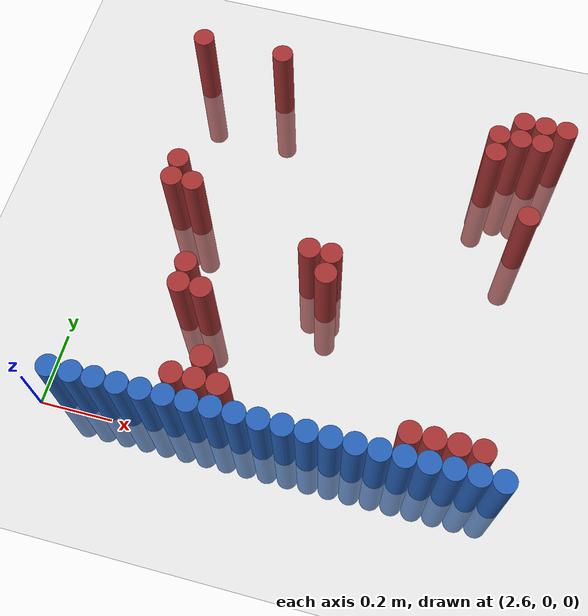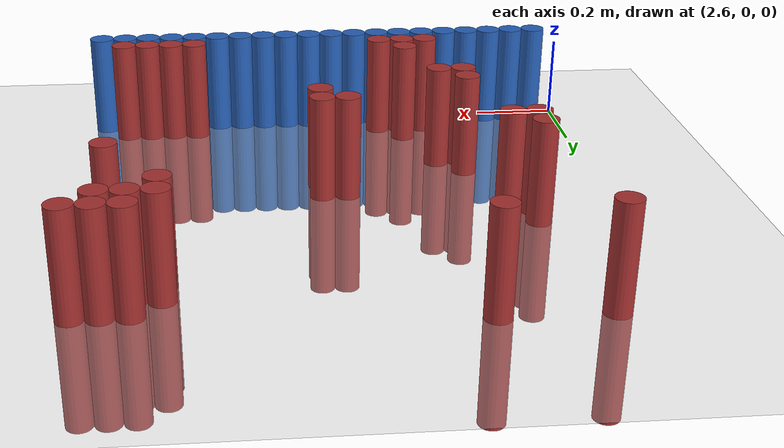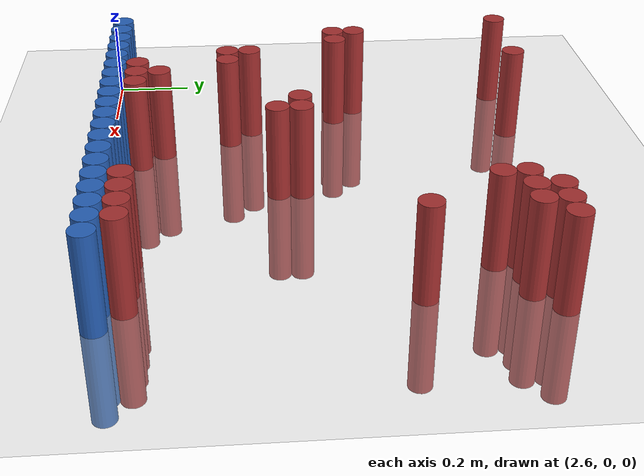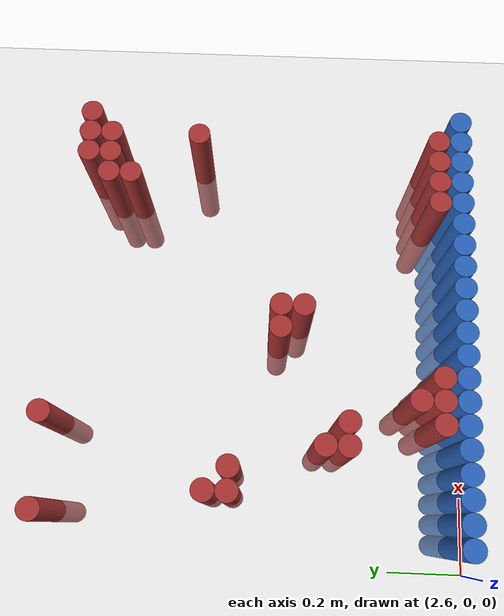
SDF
<sdf version="1.6">
 <world name="default">
  <model name="ground_plane">
   <static>1</static>
   <link name="link">
    <collision name="collision">
     <geometry><plane><normal>0 0 1</normal><size>100 100</size></plane></geometry>
     <surface><friction><ode><mu>100</mu><mu2>50</mu2></ode></friction></surface>
    </collision>
    <visual name="visual">
     <cast_shadows>0</cast_shadows>
     <geometry><plane><normal>0 0 1</normal><size>100 100</size></plane></geometry>
     <material>
      <script><uri>file://media/materials/scripts/gazebo.material</uri><name>Gazebo/Grey</name></script>
     </material>
    </visual>
   </link>
  </model>
  <model name="unit_cylinder_164">
   <static>1</static>
   <pose>2.730000 1.110000 0.000000 0.000000 0.000000 0.000000</pose>
   <link name="link">
    <inertial>
     <mass>1</mass>
     <inertia><ixx>0.145833</ixx><ixy>0</ixy><ixz>0</ixz><iyy>0.145833</iyy><iyz>0</iyz><izz>0.125</izz></inertia>
    </inertial>
    <collision name="collision">
     <geometry><cylinder><radius>0.030000</radius><length>0.5</length></cylinder></geometry>
    </collision>
    <visual name="visual">
     <geometry><cylinder><radius>0.030000</radius><length>0.5</length></cylinder></geometry>
     <material>
      <ambient>0.648000 0.192000 0.192000 1</ambient>
      <diffuse>0.648000 0.192000 0.192000 1</diffuse>
     </material>
     <material>
      <script><name>Gazebo/Grey</name><uri>file://media/materials/scripts/gazebo.material</uri></script>
     </material>
    </visual>
   </link>
  </model>
  <model name="unit_cylinder_165">
   <static>1</static>
   <pose>2.970000 1.110000 0.000000 0.000000 0.000000 0.000000</pose>
   <link name="link">
    <inertial>
     <mass>1</mass>
     <inertia><ixx>0.145833</ixx><ixy>0</ixy><ixz>0</ixz><iyy>0.145833</iyy><iyz>0</iyz><izz>0.125</izz></inertia>
    </inertial>
    <collision name="collision">
     <geometry><cylinder><radius>0.030000</radius><length>0.5</length></cylinder></geometry>
    </collision>
    <visual name="visual">
     <geometry><cylinder><radius>0.030000</radius><length>0.5</length></cylinder></geometry>
     <material>
      <ambient>0.648000 0.192000 0.192000 1</ambient>
      <diffuse>0.648000 0.192000 0.192000 1</diffuse>
     </material>
     <material>
      <script><name>Gazebo/Grey</name><uri>file://media/materials/scripts/gazebo.material</uri></script>
     </material>
    </visual>
   </link>
  </model>
  <model name="unit_cylinder_171">
   <static>1</static>
   <pose>3.690000 1.050000 0.000000 0.000000 0.000000 0.000000</pose>
   <link name="link">
    <inertial>
     <mass>1</mass>
     <inertia><ixx>0.145833</ixx><ixy>0</ixy><ixz>0</ixz><iyy>0.145833</iyy><iyz>0</iyz><izz>0.125</izz></inertia>
    </inertial>
    <collision name="collision">
     <geometry><cylinder><radius>0.030000</radius><length>0.5</length></cylinder></geometry>
    </collision>
    <visual name="visual">
     <geometry><cylinder><radius>0.030000</radius><length>0.5</length></cylinder></geometry>
     <material>
      <ambient>0.648000 0.192000 0.192000 1</ambient>
      <diffuse>0.648000 0.192000 0.192000 1</diffuse>
     </material>
     <material>
      <script><name>Gazebo/Grey</name><uri>file://media/materials/scripts/gazebo.material</uri></script>
     </material>
    </visual>
   </link>
  </model>
  <model name="unit_cylinder_172">
   <static>1</static>
   <pose>3.750000 1.050000 0.000000 0.000000 0.000000 0.000000</pose>
   <link name="link">
    <inertial>
     <mass>1</mass>
     <inertia><ixx>0.145833</ixx><ixy>0</ixy><ixz>0</ixz><iyy>0.145833</iyy><iyz>0</iyz><izz>0.125</izz></inertia>
    </inertial>
    <collision name="collision">
     <geometry><cylinder><radius>0.030000</radius><length>0.5</length></cylinder></geometry>
    </collision>
    <visual name="visual">
     <geometry><cylinder><radius>0.030000</radius><length>0.5</length></cylinder></geometry>
     <material>
      <ambient>0.648000 0.192000 0.192000 1</ambient>
      <diffuse>0.648000 0.192000 0.192000 1</diffuse>
     </material>
     <material>
      <script><name>Gazebo/Grey</name><uri>file://media/materials/scripts/gazebo.material</uri></script>
     </material>
    </visual>
   </link>
  </model>
  <model name="unit_cylinder_173">
   <static>1</static>
   <pose>3.810000 1.050000 0.000000 0.000000 0.000000 0.000000</pose>
   <link name="link">
    <inertial>
     <mass>1</mass>
     <inertia><ixx>0.145833</ixx><ixy>0</ixy><ixz>0</ixz><iyy>0.145833</iyy><iyz>0</iyz><izz>0.125</izz></inertia>
    </inertial>
    <collision name="collision">
     <geometry><cylinder><radius>0.030000</radius><length>0.5</length></cylinder></geometry>
    </collision>
    <visual name="visual">
     <geometry><cylinder><radius>0.030000</radius><length>0.5</length></cylinder></geometry>
     <material>
      <ambient>0.648000 0.192000 0.192000 1</ambient>
      <diffuse>0.648000 0.192000 0.192000 1</diffuse>
     </material>
     <material>
      <script><name>Gazebo/Grey</name><uri>file://media/materials/scripts/gazebo.material</uri></script>
     </material>
    </visual>
   </link>
  </model>
  <model name="unit_cylinder_175">
   <static>1</static>
   <pose>3.630000 0.990000 0.000000 0.000000 0.000000 0.000000</pose>
   <link name="link">
    <inertial>
     <mass>1</mass>
     <inertia><ixx>0.145833</ixx><ixy>0</ixy><ixz>0</ixz><iyy>0.145833</iyy><iyz>0</iyz><izz>0.125</izz></inertia>
    </inertial>
    <collision name="collision">
     <geometry><cylinder><radius>0.030000</radius><length>0.5</length></cylinder></geometry>
    </collision>
    <visual name="visual">
     <geometry><cylinder><radius>0.030000</radius><length>0.5</length></cylinder></geometry>
     <material>
      <ambient>0.648000 0.192000 0.192000 1</ambient>
      <diffuse>0.648000 0.192000 0.192000 1</diffuse>
     </material>
     <material>
      <script><name>Gazebo/Grey</name><uri>file://media/materials/scripts/gazebo.material</uri></script>
     </material>
    </visual>
   </link>
  </model>
  <model name="unit_cylinder_176">
   <static>1</static>
   <pose>3.690000 0.990000 0.000000 0.000000 0.000000 0.000000</pose>
   <link name="link">
    <inertial>
     <mass>1</mass>
     <inertia><ixx>0.145833</ixx><ixy>0</ixy><ixz>0</ixz><iyy>0.145833</iyy><iyz>0</iyz><izz>0.125</izz></inertia>
    </inertial>
    <collision name="collision">
     <geometry><cylinder><radius>0.030000</radius><length>0.5</length></cylinder></geometry>
    </collision>
    <visual name="visual">
     <geometry><cylinder><radius>0.030000</radius><length>0.5</length></cylinder></geometry>
     <material>
      <ambient>0.648000 0.192000 0.192000 1</ambient>
      <diffuse>0.648000 0.192000 0.192000 1</diffuse>
     </material>
     <material>
      <script><name>Gazebo/Grey</name><uri>file://media/materials/scripts/gazebo.material</uri></script>
     </material>
    </visual>
   </link>
  </model>
  <model name="unit_cylinder_177">
   <static>1</static>
   <pose>3.750000 0.990000 0.000000 0.000000 0.000000 0.000000</pose>
   <link name="link">
    <inertial>
     <mass>1</mass>
     <inertia><ixx>0.145833</ixx><ixy>0</ixy><ixz>0</ixz><iyy>0.145833</iyy><iyz>0</iyz><izz>0.125</izz></inertia>
    </inertial>
    <collision name="collision">
     <geometry><cylinder><radius>0.030000</radius><length>0.5</length></cylinder></geometry>
    </collision>
    <visual name="visual">
     <geometry><cylinder><radius>0.030000</radius><length>0.5</length></cylinder></geometry>
     <material>
      <ambient>0.648000 0.192000 0.192000 1</ambient>
      <diffuse>0.648000 0.192000 0.192000 1</diffuse>
     </material>
     <material>
      <script><name>Gazebo/Grey</name><uri>file://media/materials/scripts/gazebo.material</uri></script>
     </material>
    </visual>
   </link>
  </model>
  <model name="unit_cylinder_180">
   <static>1</static>
   <pose>3.630000 0.930000 0.000000 0.000000 0.000000 0.000000</pose>
   <link name="link">
    <inertial>
     <mass>1</mass>
     <inertia><ixx>0.145833</ixx><ixy>0</ixy><ixz>0</ixz><iyy>0.145833</iyy><iyz>0</iyz><izz>0.125</izz></inertia>
    </inertial>
    <collision name="collision">
     <geometry><cylinder><radius>0.030000</radius><length>0.5</length></cylinder></geometry>
    </collision>
    <visual name="visual">
     <geometry><cylinder><radius>0.030000</radius><length>0.5</length></cylinder></geometry>
     <material>
      <ambient>0.648000 0.192000 0.192000 1</ambient>
      <diffuse>0.648000 0.192000 0.192000 1</diffuse>
     </material>
     <material>
      <script><name>Gazebo/Grey</name><uri>file://media/materials/scripts/gazebo.material</uri></script>
     </material>
    </visual>
   </link>
  </model>
  <model name="unit_cylinder_181">
   <static>1</static>
   <pose>3.750000 0.750000 0.000000 0.000000 0.000000 0.000000</pose>
   <link name="link">
    <inertial>
     <mass>1</mass>
     <inertia><ixx>0.145833</ixx><ixy>0</ixy><ixz>0</ixz><iyy>0.145833</iyy><iyz>0</iyz><izz>0.125</izz></inertia>
    </inertial>
    <collision name="collision">
     <geometry><cylinder><radius>0.030000</radius><length>0.5</length></cylinder></geometry>
    </collision>
    <visual name="visual">
     <geometry><cylinder><radius>0.030000</radius><length>0.5</length></cylinder></geometry>
     <material>
      <ambient>0.648000 0.192000 0.192000 1</ambient>
      <diffuse>0.648000 0.192000 0.192000 1</diffuse>
     </material>
     <material>
      <script><name>Gazebo/Grey</name><uri>file://media/materials/scripts/gazebo.material</uri></script>
     </material>
    </visual>
   </link>
  </model>
  <model name="unit_cylinder_182">
   <static>1</static>
   <pose>2.790000 0.690000 0.000000 0.000000 0.000000 0.000000</pose>
   <link name="link">
    <inertial>
     <mass>1</mass>
     <inertia><ixx>0.145833</ixx><ixy>0</ixy><ixz>0</ixz><iyy>0.145833</iyy><iyz>0</iyz><izz>0.125</izz></inertia>
    </inertial>
    <collision name="collision">
     <geometry><cylinder><radius>0.030000</radius><length>0.5</length></cylinder></geometry>
    </collision>
    <visual name="visual">
     <geometry><cylinder><radius>0.030000</radius><length>0.5</length></cylinder></geometry>
     <material>
      <ambient>0.648000 0.192000 0.192000 1</ambient>
      <diffuse>0.648000 0.192000 0.192000 1</diffuse>
     </material>
     <material>
      <script><name>Gazebo/Grey</name><uri>file://media/materials/scripts/gazebo.material</uri></script>
     </material>
    </visual>
   </link>
  </model>
  <model name="unit_cylinder_183">
   <static>1</static>
   <pose>2.790000 0.630000 0.000000 0.000000 0.000000 0.000000</pose>
   <link name="link">
    <inertial>
     <mass>1</mass>
     <inertia><ixx>0.145833</ixx><ixy>0</ixy><ixz>0</ixz><iyy>0.145833</iyy><iyz>0</iyz><izz>0.125</izz></inertia>
    </inertial>
    <collision name="collision">
     <geometry><cylinder><radius>0.030000</radius><length>0.5</length></cylinder></geometry>
    </collision>
    <visual name="visual">
     <geometry><cylinder><radius>0.030000</radius><length>0.5</length></cylinder></geometry>
     <material>
      <ambient>0.648000 0.192000 0.192000 1</ambient>
      <diffuse>0.648000 0.192000 0.192000 1</diffuse>
     </material>
     <material>
      <script><name>Gazebo/Grey</name><uri>file://media/materials/scripts/gazebo.material</uri></script>
     </material>
    </visual>
   </link>
  </model>
  <model name="unit_cylinder_184">
   <static>1</static>
   <pose>2.850000 0.630000 0.000000 0.000000 0.000000 0.000000</pose>
   <link name="link">
    <inertial>
     <mass>1</mass>
     <inertia><ixx>0.145833</ixx><ixy>0</ixy><ixz>0</ixz><iyy>0.145833</iyy><iyz>0</iyz><izz>0.125</izz></inertia>
    </inertial>
    <collision name="collision">
     <geometry><cylinder><radius>0.030000</radius><length>0.5</length></cylinder></geometry>
    </collision>
    <visual name="visual">
     <geometry><cylinder><radius>0.030000</radius><length>0.5</length></cylinder></geometry>
     <material>
      <ambient>0.648000 0.192000 0.192000 1</ambient>
      <diffuse>0.648000 0.192000 0.192000 1</diffuse>
     </material>
     <material>
      <script><name>Gazebo/Grey</name><uri>file://media/materials/scripts/gazebo.material</uri></script>
     </material>
    </visual>
   </link>
  </model>
  <model name="unit_cylinder_188">
   <static>1</static>
   <pose>3.210000 0.510000 0.000000 0.000000 0.000000 0.000000</pose>
   <link name="link">
    <inertial>
     <mass>1</mass>
     <inertia><ixx>0.145833</ixx><ixy>0</ixy><ixz>0</ixz><iyy>0.145833</iyy><iyz>0</iyz><izz>0.125</izz></inertia>
    </inertial>
    <collision name="collision">
     <geometry><cylinder><radius>0.030000</radius><length>0.5</length></cylinder></geometry>
    </collision>
    <visual name="visual">
     <geometry><cylinder><radius>0.030000</radius><length>0.5</length></cylinder></geometry>
     <material>
      <ambient>0.648000 0.192000 0.192000 1</ambient>
      <diffuse>0.648000 0.192000 0.192000 1</diffuse>
     </material>
     <material>
      <script><name>Gazebo/Grey</name><uri>file://media/materials/scripts/gazebo.material</uri></script>
     </material>
    </visual>
   </link>
  </model>
  <model name="unit_cylinder_189">
   <static>1</static>
   <pose>3.270000 0.510000 0.000000 0.000000 0.000000 0.000000</pose>
   <link name="link">
    <inertial>
     <mass>1</mass>
     <inertia><ixx>0.145833</ixx><ixy>0</ixy><ixz>0</ixz><iyy>0.145833</iyy><iyz>0</iyz><izz>0.125</izz></inertia>
    </inertial>
    <collision name="collision">
     <geometry><cylinder><radius>0.030000</radius><length>0.5</length></cylinder></geometry>
    </collision>
    <visual name="visual">
     <geometry><cylinder><radius>0.030000</radius><length>0.5</length></cylinder></geometry>
     <material>
      <ambient>0.648000 0.192000 0.192000 1</ambient>
      <diffuse>0.648000 0.192000 0.192000 1</diffuse>
     </material>
     <material>
      <script><name>Gazebo/Grey</name><uri>file://media/materials/scripts/gazebo.material</uri></script>
     </material>
    </visual>
   </link>
  </model>
  <model name="unit_cylinder_190">
   <static>1</static>
   <pose>3.270000 0.450000 0.000000 0.000000 0.000000 0.000000</pose>
   <link name="link">
    <inertial>
     <mass>1</mass>
     <inertia><ixx>0.145833</ixx><ixy>0</ixy><ixz>0</ixz><iyy>0.145833</iyy><iyz>0</iyz><izz>0.125</izz></inertia>
    </inertial>
    <collision name="collision">
     <geometry><cylinder><radius>0.030000</radius><length>0.5</length></cylinder></geometry>
    </collision>
    <visual name="visual">
     <geometry><cylinder><radius>0.030000</radius><length>0.5</length></cylinder></geometry>
     <material>
      <ambient>0.648000 0.192000 0.192000 1</ambient>
      <diffuse>0.648000 0.192000 0.192000 1</diffuse>
     </material>
     <material>
      <script><name>Gazebo/Grey</name><uri>file://media/materials/scripts/gazebo.material</uri></script>
     </material>
    </visual>
   </link>
  </model>
  <model name="unit_cylinder_191">
   <static>1</static>
   <pose>2.910000 0.390000 0.000000 0.000000 0.000000 0.000000</pose>
   <link name="link">
    <inertial>
     <mass>1</mass>
     <inertia><ixx>0.145833</ixx><ixy>0</ixy><ixz>0</ixz><iyy>0.145833</iyy><iyz>0</iyz><izz>0.125</izz></inertia>
    </inertial>
    <collision name="collision">
     <geometry><cylinder><radius>0.030000</radius><length>0.5</length></cylinder></geometry>
    </collision>
    <visual name="visual">
     <geometry><cylinder><radius>0.030000</radius><length>0.5</length></cylinder></geometry>
     <material>
      <ambient>0.648000 0.192000 0.192000 1</ambient>
      <diffuse>0.648000 0.192000 0.192000 1</diffuse>
     </material>
     <material>
      <script><name>Gazebo/Grey</name><uri>file://media/materials/scripts/gazebo.material</uri></script>
     </material>
    </visual>
   </link>
  </model>
  <model name="unit_cylinder_192">
   <static>1</static>
   <pose>2.910000 0.330000 0.000000 0.000000 0.000000 0.000000</pose>
   <link name="link">
    <inertial>
     <mass>1</mass>
     <inertia><ixx>0.145833</ixx><ixy>0</ixy><ixz>0</ixz><iyy>0.145833</iyy><iyz>0</iyz><izz>0.125</izz></inertia>
    </inertial>
    <collision name="collision">
     <geometry><cylinder><radius>0.030000</radius><length>0.5</length></cylinder></geometry>
    </collision>
    <visual name="visual">
     <geometry><cylinder><radius>0.030000</radius><length>0.5</length></cylinder></geometry>
     <material>
      <ambient>0.648000 0.192000 0.192000 1</ambient>
      <diffuse>0.648000 0.192000 0.192000 1</diffuse>
     </material>
     <material>
      <script><name>Gazebo/Grey</name><uri>file://media/materials/scripts/gazebo.material</uri></script>
     </material>
    </visual>
   </link>
  </model>
  <model name="unit_cylinder_193">
   <static>1</static>
   <pose>2.970000 0.330000 0.000000 0.000000 0.000000 0.000000</pose>
   <link name="link">
    <inertial>
     <mass>1</mass>
     <inertia><ixx>0.145833</ixx><ixy>0</ixy><ixz>0</ixz><iyy>0.145833</iyy><iyz>0</iyz><izz>0.125</izz></inertia>
    </inertial>
    <collision name="collision">
     <geometry><cylinder><radius>0.030000</radius><length>0.5</length></cylinder></geometry>
    </collision>
    <visual name="visual">
     <geometry><cylinder><radius>0.030000</radius><length>0.5</length></cylinder></geometry>
     <material>
      <ambient>0.648000 0.192000 0.192000 1</ambient>
      <diffuse>0.648000 0.192000 0.192000 1</diffuse>
     </material>
     <material>
      <script><name>Gazebo/Grey</name><uri>file://media/materials/scripts/gazebo.material</uri></script>
     </material>
    </visual>
   </link>
  </model>
  <model name="unit_cylinder_198">
   <static>1</static>
   <pose>3.030000 0.150000 0.000000 0.000000 0.000000 0.000000</pose>
   <link name="link">
    <inertial>
     <mass>1</mass>
     <inertia><ixx>0.145833</ixx><ixy>0</ixy><ixz>0</ixz><iyy>0.145833</iyy><iyz>0</iyz><izz>0.125</izz></inertia>
    </inertial>
    <collision name="collision">
     <geometry><cylinder><radius>0.030000</radius><length>0.5</length></cylinder></geometry>
    </collision>
    <visual name="visual">
     <geometry><cylinder><radius>0.030000</radius><length>0.5</length></cylinder></geometry>
     <material>
      <ambient>0.648000 0.192000 0.192000 1</ambient>
      <diffuse>0.648000 0.192000 0.192000 1</diffuse>
     </material>
     <material>
      <script><name>Gazebo/Grey</name><uri>file://media/materials/scripts/gazebo.material</uri></script>
     </material>
    </visual>
   </link>
  </model>
  <model name="unit_cylinder_201">
   <static>1</static>
   <pose>2.970000 0.090000 0.000000 0.000000 0.000000 0.000000</pose>
   <link name="link">
    <inertial>
     <mass>1</mass>
     <inertia><ixx>0.145833</ixx><ixy>0</ixy><ixz>0</ixz><iyy>0.145833</iyy><iyz>0</iyz><izz>0.125</izz></inertia>
    </inertial>
    <collision name="collision">
     <geometry><cylinder><radius>0.030000</radius><length>0.5</length></cylinder></geometry>
    </collision>
    <visual name="visual">
     <geometry><cylinder><radius>0.030000</radius><length>0.5</length></cylinder></geometry>
     <material>
      <ambient>0.648000 0.192000 0.192000 1</ambient>
      <diffuse>0.648000 0.192000 0.192000 1</diffuse>
     </material>
     <material>
      <script><name>Gazebo/Grey</name><uri>file://media/materials/scripts/gazebo.material</uri></script>
     </material>
    </visual>
   </link>
  </model>
  <model name="unit_cylinder_202">
   <static>1</static>
   <pose>3.030000 0.090000 0.000000 0.000000 0.000000 0.000000</pose>
   <link name="link">
    <inertial>
     <mass>1</mass>
     <inertia><ixx>0.145833</ixx><ixy>0</ixy><ixz>0</ixz><iyy>0.145833</iyy><iyz>0</iyz><izz>0.125</izz></inertia>
    </inertial>
    <collision name="collision">
     <geometry><cylinder><radius>0.030000</radius><length>0.5</length></cylinder></geometry>
    </collision>
    <visual name="visual">
     <geometry><cylinder><radius>0.030000</radius><length>0.5</length></cylinder></geometry>
     <material>
      <ambient>0.648000 0.192000 0.192000 1</ambient>
      <diffuse>0.648000 0.192000 0.192000 1</diffuse>
     </material>
     <material>
      <script><name>Gazebo/Grey</name><uri>file://media/materials/scripts/gazebo.material</uri></script>
     </material>
    </visual>
   </link>
  </model>
  <model name="unit_cylinder_203">
   <static>1</static>
   <pose>3.090000 0.090000 0.000000 0.000000 0.000000 0.000000</pose>
   <link name="link">
    <inertial>
     <mass>1</mass>
     <inertia><ixx>0.145833</ixx><ixy>0</ixy><ixz>0</ixz><iyy>0.145833</iyy><iyz>0</iyz><izz>0.125</izz></inertia>
    </inertial>
    <collision name="collision">
     <geometry><cylinder><radius>0.030000</radius><length>0.5</length></cylinder></geometry>
    </collision>
    <visual name="visual">
     <geometry><cylinder><radius>0.030000</radius><length>0.5</length></cylinder></geometry>
     <material>
      <ambient>0.648000 0.192000 0.192000 1</ambient>
      <diffuse>0.648000 0.192000 0.192000 1</diffuse>
     </material>
     <material>
      <script><name>Gazebo/Grey</name><uri>file://media/materials/scripts/gazebo.material</uri></script>
     </material>
    </visual>
   </link>
  </model>
  <model name="unit_cylinder_204">
   <static>1</static>
   <pose>3.570000 0.090000 0.000000 0.000000 0.000000 0.000000</pose>
   <link name="link">
    <inertial>
     <mass>1</mass>
     <inertia><ixx>0.145833</ixx><ixy>0</ixy><ixz>0</ixz><iyy>0.145833</iyy><iyz>0</iyz><izz>0.125</izz></inertia>
    </inertial>
    <collision name="collision">
     <geometry><cylinder><radius>0.030000</radius><length>0.5</length></cylinder></geometry>
    </collision>
    <visual name="visual">
     <geometry><cylinder><radius>0.030000</radius><length>0.5</length></cylinder></geometry>
     <material>
      <ambient>0.648000 0.192000 0.192000 1</ambient>
      <diffuse>0.648000 0.192000 0.192000 1</diffuse>
     </material>
     <material>
      <script><name>Gazebo/Grey</name><uri>file://media/materials/scripts/gazebo.material</uri></script>
     </material>
    </visual>
   </link>
  </model>
  <model name="unit_cylinder_205">
   <static>1</static>
   <pose>3.630000 0.090000 0.000000 0.000000 0.000000 0.000000</pose>
   <link name="link">
    <inertial>
     <mass>1</mass>
     <inertia><ixx>0.145833</ixx><ixy>0</ixy><ixz>0</ixz><iyy>0.145833</iyy><iyz>0</iyz><izz>0.125</izz></inertia>
    </inertial>
    <collision name="collision">
     <geometry><cylinder><radius>0.030000</radius><length>0.5</length></cylinder></geometry>
    </collision>
    <visual name="visual">
     <geometry><cylinder><radius>0.030000</radius><length>0.5</length></cylinder></geometry>
     <material>
      <ambient>0.648000 0.192000 0.192000 1</ambient>
      <diffuse>0.648000 0.192000 0.192000 1</diffuse>
     </material>
     <material>
      <script><name>Gazebo/Grey</name><uri>file://media/materials/scripts/gazebo.material</uri></script>
     </material>
    </visual>
   </link>
  </model>
  <model name="unit_cylinder_206">
   <static>1</static>
   <pose>3.690000 0.090000 0.000000 0.000000 0.000000 0.000000</pose>
   <link name="link">
    <inertial>
     <mass>1</mass>
     <inertia><ixx>0.145833</ixx><ixy>0</ixy><ixz>0</ixz><iyy>0.145833</iyy><iyz>0</iyz><izz>0.125</izz></inertia>
    </inertial>
    <collision name="collision">
     <geometry><cylinder><radius>0.030000</radius><length>0.5</length></cylinder></geometry>
    </collision>
    <visual name="visual">
     <geometry><cylinder><radius>0.030000</radius><length>0.5</length></cylinder></geometry>
     <material>
      <ambient>0.648000 0.192000 0.192000 1</ambient>
      <diffuse>0.648000 0.192000 0.192000 1</diffuse>
     </material>
     <material>
      <script><name>Gazebo/Grey</name><uri>file://media/materials/scripts/gazebo.material</uri></script>
     </material>
    </visual>
   </link>
  </model>
  <model name="unit_cylinder_207">
   <static>1</static>
   <pose>3.750000 0.090000 0.000000 0.000000 0.000000 0.000000</pose>
   <link name="link">
    <inertial>
     <mass>1</mass>
     <inertia><ixx>0.145833</ixx><ixy>0</ixy><ixz>0</ixz><iyy>0.145833</iyy><iyz>0</iyz><izz>0.125</izz></inertia>
    </inertial>
    <collision name="collision">
     <geometry><cylinder><radius>0.030000</radius><length>0.5</length></cylinder></geometry>
    </collision>
    <visual name="visual">
     <geometry><cylinder><radius>0.030000</radius><length>0.5</length></cylinder></geometry>
     <material>
      <ambient>0.648000 0.192000 0.192000 1</ambient>
      <diffuse>0.648000 0.192000 0.192000 1</diffuse>
     </material>
     <material>
      <script><name>Gazebo/Grey</name><uri>file://media/materials/scripts/gazebo.material</uri></script>
     </material>
    </visual>
   </link>
  </model>
  <model name="unit_cylinder_218">
   <static>1</static>
   <pose>2.670000 0.030000 0.000000 0.000000 0.000000 0.000000</pose>
   <link name="link">
    <inertial>
     <mass>1</mass>
     <inertia><ixx>0.145833</ixx><ixy>0</ixy><ixz>0</ixz><iyy>0.145833</iyy><iyz>0</iyz><izz>0.125</izz></inertia>
    </inertial>
    <collision name="collision">
     <geometry><cylinder><radius>0.030000</radius><length>0.5</length></cylinder></geometry>
    </collision>
    <visual name="visual">
     <geometry><cylinder><radius>0.030000</radius><length>0.5</length></cylinder></geometry>
     <material>
      <ambient>0.152000 0.379000 0.720000 1</ambient>
      <diffuse>0.152000 0.379000 0.720000 1</diffuse>
     </material>
     <material>
      <script><name>Gazebo/Grey</name><uri>file://media/materials/scripts/gazebo.material</uri></script>
     </material>
    </visual>
   </link>
  </model>
  <model name="unit_cylinder_219">
   <static>1</static>
   <pose>2.730000 0.030000 0.000000 0.000000 0.000000 0.000000</pose>
   <link name="link">
    <inertial>
     <mass>1</mass>
     <inertia><ixx>0.145833</ixx><ixy>0</ixy><ixz>0</ixz><iyy>0.145833</iyy><iyz>0</iyz><izz>0.125</izz></inertia>
    </inertial>
    <collision name="collision">
     <geometry><cylinder><radius>0.030000</radius><length>0.5</length></cylinder></geometry>
    </collision>
    <visual name="visual">
     <geometry><cylinder><radius>0.030000</radius><length>0.5</length></cylinder></geometry>
     <material>
      <ambient>0.152000 0.379000 0.720000 1</ambient>
      <diffuse>0.152000 0.379000 0.720000 1</diffuse>
     </material>
     <material>
      <script><name>Gazebo/Grey</name><uri>file://media/materials/scripts/gazebo.material</uri></script>
     </material>
    </visual>
   </link>
  </model>
  <model name="unit_cylinder_220">
   <static>1</static>
   <pose>2.790000 0.030000 0.000000 0.000000 0.000000 0.000000</pose>
   <link name="link">
    <inertial>
     <mass>1</mass>
     <inertia><ixx>0.145833</ixx><ixy>0</ixy><ixz>0</ixz><iyy>0.145833</iyy><iyz>0</iyz><izz>0.125</izz></inertia>
    </inertial>
    <collision name="collision">
     <geometry><cylinder><radius>0.030000</radius><length>0.5</length></cylinder></geometry>
    </collision>
    <visual name="visual">
     <geometry><cylinder><radius>0.030000</radius><length>0.5</length></cylinder></geometry>
     <material>
      <ambient>0.152000 0.379000 0.720000 1</ambient>
      <diffuse>0.152000 0.379000 0.720000 1</diffuse>
     </material>
     <material>
      <script><name>Gazebo/Grey</name><uri>file://media/materials/scripts/gazebo.material</uri></script>
     </material>
    </visual>
   </link>
  </model>
  <model name="unit_cylinder_221">
   <static>1</static>
   <pose>2.850000 0.030000 0.000000 0.000000 0.000000 0.000000</pose>
   <link name="link">
    <inertial>
     <mass>1</mass>
     <inertia><ixx>0.145833</ixx><ixy>0</ixy><ixz>0</ixz><iyy>0.145833</iyy><iyz>0</iyz><izz>0.125</izz></inertia>
    </inertial>
    <collision name="collision">
     <geometry><cylinder><radius>0.030000</radius><length>0.5</length></cylinder></geometry>
    </collision>
    <visual name="visual">
     <geometry><cylinder><radius>0.030000</radius><length>0.5</length></cylinder></geometry>
     <material>
      <ambient>0.152000 0.379000 0.720000 1</ambient>
      <diffuse>0.152000 0.379000 0.720000 1</diffuse>
     </material>
     <material>
      <script><name>Gazebo/Grey</name><uri>file://media/materials/scripts/gazebo.material</uri></script>
     </material>
    </visual>
   </link>
  </model>
  <model name="unit_cylinder_222">
   <static>1</static>
   <pose>2.910000 0.030000 0.000000 0.000000 0.000000 0.000000</pose>
   <link name="link">
    <inertial>
     <mass>1</mass>
     <inertia><ixx>0.145833</ixx><ixy>0</ixy><ixz>0</ixz><iyy>0.145833</iyy><iyz>0</iyz><izz>0.125</izz></inertia>
    </inertial>
    <collision name="collision">
     <geometry><cylinder><radius>0.030000</radius><length>0.5</length></cylinder></geometry>
    </collision>
    <visual name="visual">
     <geometry><cylinder><radius>0.030000</radius><length>0.5</length></cylinder></geometry>
     <material>
      <ambient>0.152000 0.379000 0.720000 1</ambient>
      <diffuse>0.152000 0.379000 0.720000 1</diffuse>
     </material>
     <material>
      <script><name>Gazebo/Grey</name><uri>file://media/materials/scripts/gazebo.material</uri></script>
     </material>
    </visual>
   </link>
  </model>
  <model name="unit_cylinder_223">
   <static>1</static>
   <pose>2.970000 0.030000 0.000000 0.000000 0.000000 0.000000</pose>
   <link name="link">
    <inertial>
     <mass>1</mass>
     <inertia><ixx>0.145833</ixx><ixy>0</ixy><ixz>0</ixz><iyy>0.145833</iyy><iyz>0</iyz><izz>0.125</izz></inertia>
    </inertial>
    <collision name="collision">
     <geometry><cylinder><radius>0.030000</radius><length>0.5</length></cylinder></geometry>
    </collision>
    <visual name="visual">
     <geometry><cylinder><radius>0.030000</radius><length>0.5</length></cylinder></geometry>
     <material>
      <ambient>0.152000 0.379000 0.720000 1</ambient>
      <diffuse>0.152000 0.379000 0.720000 1</diffuse>
     </material>
     <material>
      <script><name>Gazebo/Grey</name><uri>file://media/materials/scripts/gazebo.material</uri></script>
     </material>
    </visual>
   </link>
  </model>
  <model name="unit_cylinder_224">
   <static>1</static>
   <pose>3.030000 0.030000 0.000000 0.000000 0.000000 0.000000</pose>
   <link name="link">
    <inertial>
     <mass>1</mass>
     <inertia><ixx>0.145833</ixx><ixy>0</ixy><ixz>0</ixz><iyy>0.145833</iyy><iyz>0</iyz><izz>0.125</izz></inertia>
    </inertial>
    <collision name="collision">
     <geometry><cylinder><radius>0.030000</radius><length>0.5</length></cylinder></geometry>
    </collision>
    <visual name="visual">
     <geometry><cylinder><radius>0.030000</radius><length>0.5</length></cylinder></geometry>
     <material>
      <ambient>0.152000 0.379000 0.720000 1</ambient>
      <diffuse>0.152000 0.379000 0.720000 1</diffuse>
     </material>
     <material>
      <script><name>Gazebo/Grey</name><uri>file://media/materials/scripts/gazebo.material</uri></script>
     </material>
    </visual>
   </link>
  </model>
  <model name="unit_cylinder_225">
   <static>1</static>
   <pose>3.090000 0.030000 0.000000 0.000000 0.000000 0.000000</pose>
   <link name="link">
    <inertial>
     <mass>1</mass>
     <inertia><ixx>0.145833</ixx><ixy>0</ixy><ixz>0</ixz><iyy>0.145833</iyy><iyz>0</iyz><izz>0.125</izz></inertia>
    </inertial>
    <collision name="collision">
     <geometry><cylinder><radius>0.030000</radius><length>0.5</length></cylinder></geometry>
    </collision>
    <visual name="visual">
     <geometry><cylinder><radius>0.030000</radius><length>0.5</length></cylinder></geometry>
     <material>
      <ambient>0.152000 0.379000 0.720000 1</ambient>
      <diffuse>0.152000 0.379000 0.720000 1</diffuse>
     </material>
     <material>
      <script><name>Gazebo/Grey</name><uri>file://media/materials/scripts/gazebo.material</uri></script>
     </material>
    </visual>
   </link>
  </model>
  <model name="unit_cylinder_226">
   <static>1</static>
   <pose>3.150000 0.030000 0.000000 0.000000 0.000000 0.000000</pose>
   <link name="link">
    <inertial>
     <mass>1</mass>
     <inertia><ixx>0.145833</ixx><ixy>0</ixy><ixz>0</ixz><iyy>0.145833</iyy><iyz>0</iyz><izz>0.125</izz></inertia>
    </inertial>
    <collision name="collision">
     <geometry><cylinder><radius>0.030000</radius><length>0.5</length></cylinder></geometry>
    </collision>
    <visual name="visual">
     <geometry><cylinder><radius>0.030000</radius><length>0.5</length></cylinder></geometry>
     <material>
      <ambient>0.152000 0.379000 0.720000 1</ambient>
      <diffuse>0.152000 0.379000 0.720000 1</diffuse>
     </material>
     <material>
      <script><name>Gazebo/Grey</name><uri>file://media/materials/scripts/gazebo.material</uri></script>
     </material>
    </visual>
   </link>
  </model>
  <model name="unit_cylinder_227">
   <static>1</static>
   <pose>3.210000 0.030000 0.000000 0.000000 0.000000 0.000000</pose>
   <link name="link">
    <inertial>
     <mass>1</mass>
     <inertia><ixx>0.145833</ixx><ixy>0</ixy><ixz>0</ixz><iyy>0.145833</iyy><iyz>0</iyz><izz>0.125</izz></inertia>
    </inertial>
    <collision name="collision">
     <geometry><cylinder><radius>0.030000</radius><length>0.5</length></cylinder></geometry>
    </collision>
    <visual name="visual">
     <geometry><cylinder><radius>0.030000</radius><length>0.5</length></cylinder></geometry>
     <material>
      <ambient>0.152000 0.379000 0.720000 1</ambient>
      <diffuse>0.152000 0.379000 0.720000 1</diffuse>
     </material>
     <material>
      <script><name>Gazebo/Grey</name><uri>file://media/materials/scripts/gazebo.material</uri></script>
     </material>
    </visual>
   </link>
  </model>
  <model name="unit_cylinder_228">
   <static>1</static>
   <pose>3.270000 0.030000 0.000000 0.000000 0.000000 0.000000</pose>
   <link name="link">
    <inertial>
     <mass>1</mass>
     <inertia><ixx>0.145833</ixx><ixy>0</ixy><ixz>0</ixz><iyy>0.145833</iyy><iyz>0</iyz><izz>0.125</izz></inertia>
    </inertial>
    <collision name="collision">
     <geometry><cylinder><radius>0.030000</radius><length>0.5</length></cylinder></geometry>
    </collision>
    <visual name="visual">
     <geometry><cylinder><radius>0.030000</radius><length>0.5</length></cylinder></geometry>
     <material>
      <ambient>0.152000 0.379000 0.720000 1</ambient>
      <diffuse>0.152000 0.379000 0.720000 1</diffuse>
     </material>
     <material>
      <script><name>Gazebo/Grey</name><uri>file://media/materials/scripts/gazebo.material</uri></script>
     </material>
    </visual>
   </link>
  </model>
  <model name="unit_cylinder_229">
   <static>1</static>
   <pose>3.330000 0.030000 0.000000 0.000000 0.000000 0.000000</pose>
   <link name="link">
    <inertial>
     <mass>1</mass>
     <inertia><ixx>0.145833</ixx><ixy>0</ixy><ixz>0</ixz><iyy>0.145833</iyy><iyz>0</iyz><izz>0.125</izz></inertia>
    </inertial>
    <collision name="collision">
     <geometry><cylinder><radius>0.030000</radius><length>0.5</length></cylinder></geometry>
    </collision>
    <visual name="visual">
     <geometry><cylinder><radius>0.030000</radius><length>0.5</length></cylinder></geometry>
     <material>
      <ambient>0.152000 0.379000 0.720000 1</ambient>
      <diffuse>0.152000 0.379000 0.720000 1</diffuse>
     </material>
     <material>
      <script><name>Gazebo/Grey</name><uri>file://media/materials/scripts/gazebo.material</uri></script>
     </material>
    </visual>
   </link>
  </model>
  <model name="unit_cylinder_230">
   <static>1</static>
   <pose>3.390000 0.030000 0.000000 0.000000 0.000000 0.000000</pose>
   <link name="link">
    <inertial>
     <mass>1</mass>
     <inertia><ixx>0.145833</ixx><ixy>0</ixy><ixz>0</ixz><iyy>0.145833</iyy><iyz>0</iyz><izz>0.125</izz></inertia>
    </inertial>
    <collision name="collision">
     <geometry><cylinder><radius>0.030000</radius><length>0.5</length></cylinder></geometry>
    </collision>
    <visual name="visual">
     <geometry><cylinder><radius>0.030000</radius><length>0.5</length></cylinder></geometry>
     <material>
      <ambient>0.152000 0.379000 0.720000 1</ambient>
      <diffuse>0.152000 0.379000 0.720000 1</diffuse>
     </material>
     <material>
      <script><name>Gazebo/Grey</name><uri>file://media/materials/scripts/gazebo.material</uri></script>
     </material>
    </visual>
   </link>
  </model>
  <model name="unit_cylinder_231">
   <static>1</static>
   <pose>3.450000 0.030000 0.000000 0.000000 0.000000 0.000000</pose>
   <link name="link">
    <inertial>
     <mass>1</mass>
     <inertia><ixx>0.145833</ixx><ixy>0</ixy><ixz>0</ixz><iyy>0.145833</iyy><iyz>0</iyz><izz>0.125</izz></inertia>
    </inertial>
    <collision name="collision">
     <geometry><cylinder><radius>0.030000</radius><length>0.5</length></cylinder></geometry>
    </collision>
    <visual name="visual">
     <geometry><cylinder><radius>0.030000</radius><length>0.5</length></cylinder></geometry>
     <material>
      <ambient>0.152000 0.379000 0.720000 1</ambient>
      <diffuse>0.152000 0.379000 0.720000 1</diffuse>
     </material>
     <material>
      <script><name>Gazebo/Grey</name><uri>file://media/materials/scripts/gazebo.material</uri></script>
     </material>
    </visual>
   </link>
  </model>
  <model name="unit_cylinder_232">
   <static>1</static>
   <pose>3.510000 0.030000 0.000000 0.000000 0.000000 0.000000</pose>
   <link name="link">
    <inertial>
     <mass>1</mass>
     <inertia><ixx>0.145833</ixx><ixy>0</ixy><ixz>0</ixz><iyy>0.145833</iyy><iyz>0</iyz><izz>0.125</izz></inertia>
    </inertial>
    <collision name="collision">
     <geometry><cylinder><radius>0.030000</radius><length>0.5</length></cylinder></geometry>
    </collision>
    <visual name="visual">
     <geometry><cylinder><radius>0.030000</radius><length>0.5</length></cylinder></geometry>
     <material>
      <ambient>0.152000 0.379000 0.720000 1</ambient>
      <diffuse>0.152000 0.379000 0.720000 1</diffuse>
     </material>
     <material>
      <script><name>Gazebo/Grey</name><uri>file://media/materials/scripts/gazebo.material</uri></script>
     </material>
    </visual>
   </link>
  </model>
  <model name="unit_cylinder_233">
   <static>1</static>
   <pose>3.570000 0.030000 0.000000 0.000000 0.000000 0.000000</pose>
   <link name="link">
    <inertial>
     <mass>1</mass>
     <inertia><ixx>0.145833</ixx><ixy>0</ixy><ixz>0</ixz><iyy>0.145833</iyy><iyz>0</iyz><izz>0.125</izz></inertia>
    </inertial>
    <collision name="collision">
     <geometry><cylinder><radius>0.030000</radius><length>0.5</length></cylinder></geometry>
    </collision>
    <visual name="visual">
     <geometry><cylinder><radius>0.030000</radius><length>0.5</length></cylinder></geometry>
     <material>
      <ambient>0.152000 0.379000 0.720000 1</ambient>
      <diffuse>0.152000 0.379000 0.720000 1</diffuse>
     </material>
     <material>
      <script><name>Gazebo/Grey</name><uri>file://media/materials/scripts/gazebo.material</uri></script>
     </material>
    </visual>
   </link>
  </model>
  <model name="unit_cylinder_234">
   <static>1</static>
   <pose>3.630000 0.030000 0.000000 0.000000 0.000000 0.000000</pose>
   <link name="link">
    <inertial>
     <mass>1</mass>
     <inertia><ixx>0.145833</ixx><ixy>0</ixy><ixz>0</ixz><iyy>0.145833</iyy><iyz>0</iyz><izz>0.125</izz></inertia>
    </inertial>
    <collision name="collision">
     <geometry><cylinder><radius>0.030000</radius><length>0.5</length></cylinder></geometry>
    </collision>
    <visual name="visual">
     <geometry><cylinder><radius>0.030000</radius><length>0.5</length></cylinder></geometry>
     <material>
      <ambient>0.152000 0.379000 0.720000 1</ambient>
      <diffuse>0.152000 0.379000 0.720000 1</diffuse>
     </material>
     <material>
      <script><name>Gazebo/Grey</name><uri>file://media/materials/scripts/gazebo.material</uri></script>
     </material>
    </visual>
   </link>
  </model>
  <model name="unit_cylinder_235">
   <static>1</static>
   <pose>3.690000 0.030000 0.000000 0.000000 0.000000 0.000000</pose>
   <link name="link">
    <inertial>
     <mass>1</mass>
     <inertia><ixx>0.145833</ixx><ixy>0</ixy><ixz>0</ixz><iyy>0.145833</iyy><iyz>0</iyz><izz>0.125</izz></inertia>
    </inertial>
    <collision name="collision">
     <geometry><cylinder><radius>0.030000</radius><length>0.5</length></cylinder></geometry>
    </collision>
    <visual name="visual">
     <geometry><cylinder><radius>0.030000</radius><length>0.5</length></cylinder></geometry>
     <material>
      <ambient>0.152000 0.379000 0.720000 1</ambient>
      <diffuse>0.152000 0.379000 0.720000 1</diffuse>
     </material>
     <material>
      <script><name>Gazebo/Grey</name><uri>file://media/materials/scripts/gazebo.material</uri></script>
     </material>
    </visual>
   </link>
  </model>
  <model name="unit_cylinder_236">
   <static>1</static>
   <pose>3.750000 0.030000 0.000000 0.000000 0.000000 0.000000</pose>
   <link name="link">
    <inertial>
     <mass>1</mass>
     <inertia><ixx>0.145833</ixx><ixy>0</ixy><ixz>0</ixz><iyy>0.145833</iyy><iyz>0</iyz><izz>0.125</izz></inertia>
    </inertial>
    <collision name="collision">
     <geometry><cylinder><radius>0.030000</radius><length>0.5</length></cylinder></geometry>
    </collision>
    <visual name="visual">
     <geometry><cylinder><radius>0.030000</radius><length>0.5</length></cylinder></geometry>
     <material>
      <ambient>0.152000 0.379000 0.720000 1</ambient>
      <diffuse>0.152000 0.379000 0.720000 1</diffuse>
     </material>
     <material>
      <script><name>Gazebo/Grey</name><uri>file://media/materials/scripts/gazebo.material</uri></script>
     </material>
    </visual>
   </link>
  </model>
  <model name="unit_cylinder_237">
   <static>1</static>
   <pose>3.810000 0.030000 0.000000 0.000000 0.000000 0.000000</pose>
   <link name="link">
    <inertial>
     <mass>1</mass>
     <inertia><ixx>0.145833</ixx><ixy>0</ixy><ixz>0</ixz><iyy>0.145833</iyy><iyz>0</iyz><izz>0.125</izz></inertia>
    </inertial>
    <collision name="collision">
     <geometry><cylinder><radius>0.030000</radius><length>0.5</length></cylinder></geometry>
    </collision>
    <visual name="visual">
     <geometry><cylinder><radius>0.030000</radius><length>0.5</length></cylinder></geometry>
     <material>
      <ambient>0.152000 0.379000 0.720000 1</ambient>
      <diffuse>0.152000 0.379000 0.720000 1</diffuse>
     </material>
     <material>
      <script><name>Gazebo/Grey</name><uri>file://media/materials/scripts/gazebo.material</uri></script>
     </material>
    </visual>
   </link>
  </model>
 </world>
</sdf>
